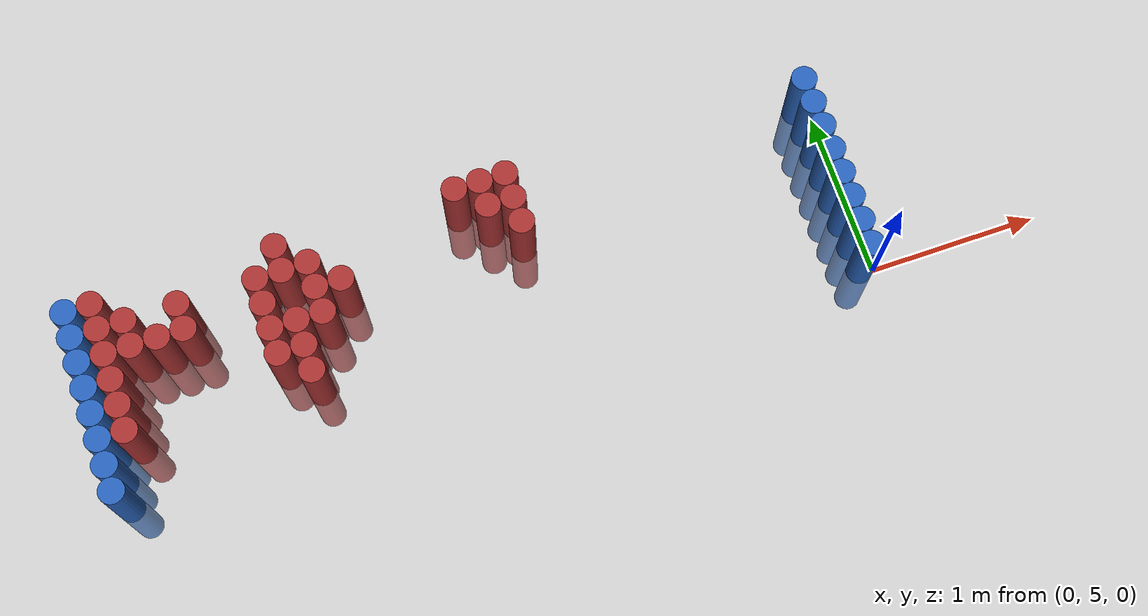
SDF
<sdf version="1.6">
 <world name="default">
  <model name="ground_plane">
   <static>1</static>
   <link name="link">
    <collision name="collision">
     <geometry><plane><normal>0 0 1</normal><size>100 100</size></plane></geometry>
     <surface><friction><ode><mu>100</mu><mu2>50</mu2></ode></friction></surface>
    </collision>
    <visual name="visual">
     <cast_shadows>0</cast_shadows>
     <geometry><plane><normal>0 0 1</normal><size>100 100</size></plane></geometry>
     <material>
      <script><uri>file://media/materials/scripts/gazebo.material</uri><name>Gazebo/Grey</name></script>
     </material>
    </visual>
   </link>
  </model>
  <model name="unit_cylinder_94">
   <static>1</static>
   <pose>-0.075000 5.025000 0.000000 0.000000 0.000000 0.000000</pose>
   <link name="link">
    <inertial>
     <mass>1</mass>
     <inertia><ixx>0.145833</ixx><ixy>0</ixy><ixz>0</ixz><iyy>0.145833</iyy><iyz>0</iyz><izz>0.125</izz></inertia>
    </inertial>
    <collision name="collision">
     <geometry><cylinder><radius>0.075000</radius><length>1</length></cylinder></geometry>
    </collision>
    <visual name="visual">
     <geometry><cylinder><radius>0.075000</radius><length>1</length></cylinder></geometry>
     <material>
      <ambient>0.152000 0.379000 0.720000 1</ambient>
      <diffuse>0.152000 0.379000 0.720000 1</diffuse>
     </material>
     <material>
      <script><name>Gazebo/Grey</name><uri>file://media/materials/scripts/gazebo.material</uri></script>
     </material>
    </visual>
   </link>
  </model>
  <model name="unit_cylinder_95">
   <static>1</static>
   <pose>-4.425000 5.025000 0.000000 0.000000 0.000000 0.000000</pose>
   <link name="link">
    <inertial>
     <mass>1</mass>
     <inertia><ixx>0.145833</ixx><ixy>0</ixy><ixz>0</ixz><iyy>0.145833</iyy><iyz>0</iyz><izz>0.125</izz></inertia>
    </inertial>
    <collision name="collision">
     <geometry><cylinder><radius>0.075000</radius><length>1</length></cylinder></geometry>
    </collision>
    <visual name="visual">
     <geometry><cylinder><radius>0.075000</radius><length>1</length></cylinder></geometry>
     <material>
      <ambient>0.152000 0.379000 0.720000 1</ambient>
      <diffuse>0.152000 0.379000 0.720000 1</diffuse>
     </material>
     <material>
      <script><name>Gazebo/Grey</name><uri>file://media/materials/scripts/gazebo.material</uri></script>
     </material>
    </visual>
   </link>
  </model>
  <model name="unit_cylinder_96">
   <static>1</static>
   <pose>-4.425000 5.175000 0.000000 0.000000 0.000000 0.000000</pose>
   <link name="link">
    <inertial>
     <mass>1</mass>
     <inertia><ixx>0.145833</ixx><ixy>0</ixy><ixz>0</ixz><iyy>0.145833</iyy><iyz>0</iyz><izz>0.125</izz></inertia>
    </inertial>
    <collision name="collision">
     <geometry><cylinder><radius>0.075000</radius><length>1</length></cylinder></geometry>
    </collision>
    <visual name="visual">
     <geometry><cylinder><radius>0.075000</radius><length>1</length></cylinder></geometry>
     <material>
      <ambient>0.152000 0.379000 0.720000 1</ambient>
      <diffuse>0.152000 0.379000 0.720000 1</diffuse>
     </material>
     <material>
      <script><name>Gazebo/Grey</name><uri>file://media/materials/scripts/gazebo.material</uri></script>
     </material>
    </visual>
   </link>
  </model>
  <model name="unit_cylinder_97">
   <static>1</static>
   <pose>-4.425000 5.325000 0.000000 0.000000 0.000000 0.000000</pose>
   <link name="link">
    <inertial>
     <mass>1</mass>
     <inertia><ixx>0.145833</ixx><ixy>0</ixy><ixz>0</ixz><iyy>0.145833</iyy><iyz>0</iyz><izz>0.125</izz></inertia>
    </inertial>
    <collision name="collision">
     <geometry><cylinder><radius>0.075000</radius><length>1</length></cylinder></geometry>
    </collision>
    <visual name="visual">
     <geometry><cylinder><radius>0.075000</radius><length>1</length></cylinder></geometry>
     <material>
      <ambient>0.152000 0.379000 0.720000 1</ambient>
      <diffuse>0.152000 0.379000 0.720000 1</diffuse>
     </material>
     <material>
      <script><name>Gazebo/Grey</name><uri>file://media/materials/scripts/gazebo.material</uri></script>
     </material>
    </visual>
   </link>
  </model>
  <model name="unit_cylinder_98">
   <static>1</static>
   <pose>-4.425000 5.475000 0.000000 0.000000 0.000000 0.000000</pose>
   <link name="link">
    <inertial>
     <mass>1</mass>
     <inertia><ixx>0.145833</ixx><ixy>0</ixy><ixz>0</ixz><iyy>0.145833</iyy><iyz>0</iyz><izz>0.125</izz></inertia>
    </inertial>
    <collision name="collision">
     <geometry><cylinder><radius>0.075000</radius><length>1</length></cylinder></geometry>
    </collision>
    <visual name="visual">
     <geometry><cylinder><radius>0.075000</radius><length>1</length></cylinder></geometry>
     <material>
      <ambient>0.152000 0.379000 0.720000 1</ambient>
      <diffuse>0.152000 0.379000 0.720000 1</diffuse>
     </material>
     <material>
      <script><name>Gazebo/Grey</name><uri>file://media/materials/scripts/gazebo.material</uri></script>
     </material>
    </visual>
   </link>
  </model>
  <model name="unit_cylinder_99">
   <static>1</static>
   <pose>-4.425000 5.625000 0.000000 0.000000 0.000000 0.000000</pose>
   <link name="link">
    <inertial>
     <mass>1</mass>
     <inertia><ixx>0.145833</ixx><ixy>0</ixy><ixz>0</ixz><iyy>0.145833</iyy><iyz>0</iyz><izz>0.125</izz></inertia>
    </inertial>
    <collision name="collision">
     <geometry><cylinder><radius>0.075000</radius><length>1</length></cylinder></geometry>
    </collision>
    <visual name="visual">
     <geometry><cylinder><radius>0.075000</radius><length>1</length></cylinder></geometry>
     <material>
      <ambient>0.152000 0.379000 0.720000 1</ambient>
      <diffuse>0.152000 0.379000 0.720000 1</diffuse>
     </material>
     <material>
      <script><name>Gazebo/Grey</name><uri>file://media/materials/scripts/gazebo.material</uri></script>
     </material>
    </visual>
   </link>
  </model>
  <model name="unit_cylinder_100">
   <static>1</static>
   <pose>-4.425000 5.775000 0.000000 0.000000 0.000000 0.000000</pose>
   <link name="link">
    <inertial>
     <mass>1</mass>
     <inertia><ixx>0.145833</ixx><ixy>0</ixy><ixz>0</ixz><iyy>0.145833</iyy><iyz>0</iyz><izz>0.125</izz></inertia>
    </inertial>
    <collision name="collision">
     <geometry><cylinder><radius>0.075000</radius><length>1</length></cylinder></geometry>
    </collision>
    <visual name="visual">
     <geometry><cylinder><radius>0.075000</radius><length>1</length></cylinder></geometry>
     <material>
      <ambient>0.152000 0.379000 0.720000 1</ambient>
      <diffuse>0.152000 0.379000 0.720000 1</diffuse>
     </material>
     <material>
      <script><name>Gazebo/Grey</name><uri>file://media/materials/scripts/gazebo.material</uri></script>
     </material>
    </visual>
   </link>
  </model>
  <model name="unit_cylinder_101">
   <static>1</static>
   <pose>-4.425000 5.925000 0.000000 0.000000 0.000000 0.000000</pose>
   <link name="link">
    <inertial>
     <mass>1</mass>
     <inertia><ixx>0.145833</ixx><ixy>0</ixy><ixz>0</ixz><iyy>0.145833</iyy><iyz>0</iyz><izz>0.125</izz></inertia>
    </inertial>
    <collision name="collision">
     <geometry><cylinder><radius>0.075000</radius><length>1</length></cylinder></geometry>
    </collision>
    <visual name="visual">
     <geometry><cylinder><radius>0.075000</radius><length>1</length></cylinder></geometry>
     <material>
      <ambient>0.152000 0.379000 0.720000 1</ambient>
      <diffuse>0.152000 0.379000 0.720000 1</diffuse>
     </material>
     <material>
      <script><name>Gazebo/Grey</name><uri>file://media/materials/scripts/gazebo.material</uri></script>
     </material>
    </visual>
   </link>
  </model>
  <model name="unit_cylinder_102">
   <static>1</static>
   <pose>-4.425000 6.075000 0.000000 0.000000 0.000000 0.000000</pose>
   <link name="link">
    <inertial>
     <mass>1</mass>
     <inertia><ixx>0.145833</ixx><ixy>0</ixy><ixz>0</ixz><iyy>0.145833</iyy><iyz>0</iyz><izz>0.125</izz></inertia>
    </inertial>
    <collision name="collision">
     <geometry><cylinder><radius>0.075000</radius><length>1</length></cylinder></geometry>
    </collision>
    <visual name="visual">
     <geometry><cylinder><radius>0.075000</radius><length>1</length></cylinder></geometry>
     <material>
      <ambient>0.152000 0.379000 0.720000 1</ambient>
      <diffuse>0.152000 0.379000 0.720000 1</diffuse>
     </material>
     <material>
      <script><name>Gazebo/Grey</name><uri>file://media/materials/scripts/gazebo.material</uri></script>
     </material>
    </visual>
   </link>
  </model>
  <model name="unit_cylinder_126">
   <static>1</static>
   <pose>-4.275000 5.325000 0.000000 0.000000 0.000000 0.000000</pose>
   <link name="link">
    <inertial>
     <mass>1</mass>
     <inertia><ixx>0.145833</ixx><ixy>0</ixy><ixz>0</ixz><iyy>0.145833</iyy><iyz>0</iyz><izz>0.125</izz></inertia>
    </inertial>
    <collision name="collision">
     <geometry><cylinder><radius>0.075000</radius><length>1</length></cylinder></geometry>
    </collision>
    <visual name="visual">
     <geometry><cylinder><radius>0.075000</radius><length>1</length></cylinder></geometry>
     <material>
      <ambient>0.648000 0.192000 0.192000 1</ambient>
      <diffuse>0.648000 0.192000 0.192000 1</diffuse>
     </material>
     <material>
      <script><name>Gazebo/Grey</name><uri>file://media/materials/scripts/gazebo.material</uri></script>
     </material>
    </visual>
   </link>
  </model>
  <model name="unit_cylinder_127">
   <static>1</static>
   <pose>-4.275000 5.475000 0.000000 0.000000 0.000000 0.000000</pose>
   <link name="link">
    <inertial>
     <mass>1</mass>
     <inertia><ixx>0.145833</ixx><ixy>0</ixy><ixz>0</ixz><iyy>0.145833</iyy><iyz>0</iyz><izz>0.125</izz></inertia>
    </inertial>
    <collision name="collision">
     <geometry><cylinder><radius>0.075000</radius><length>1</length></cylinder></geometry>
    </collision>
    <visual name="visual">
     <geometry><cylinder><radius>0.075000</radius><length>1</length></cylinder></geometry>
     <material>
      <ambient>0.648000 0.192000 0.192000 1</ambient>
      <diffuse>0.648000 0.192000 0.192000 1</diffuse>
     </material>
     <material>
      <script><name>Gazebo/Grey</name><uri>file://media/materials/scripts/gazebo.material</uri></script>
     </material>
    </visual>
   </link>
  </model>
  <model name="unit_cylinder_128">
   <static>1</static>
   <pose>-4.275000 5.625000 0.000000 0.000000 0.000000 0.000000</pose>
   <link name="link">
    <inertial>
     <mass>1</mass>
     <inertia><ixx>0.145833</ixx><ixy>0</ixy><ixz>0</ixz><iyy>0.145833</iyy><iyz>0</iyz><izz>0.125</izz></inertia>
    </inertial>
    <collision name="collision">
     <geometry><cylinder><radius>0.075000</radius><length>1</length></cylinder></geometry>
    </collision>
    <visual name="visual">
     <geometry><cylinder><radius>0.075000</radius><length>1</length></cylinder></geometry>
     <material>
      <ambient>0.648000 0.192000 0.192000 1</ambient>
      <diffuse>0.648000 0.192000 0.192000 1</diffuse>
     </material>
     <material>
      <script><name>Gazebo/Grey</name><uri>file://media/materials/scripts/gazebo.material</uri></script>
     </material>
    </visual>
   </link>
  </model>
  <model name="unit_cylinder_129">
   <static>1</static>
   <pose>-4.275000 5.775000 0.000000 0.000000 0.000000 0.000000</pose>
   <link name="link">
    <inertial>
     <mass>1</mass>
     <inertia><ixx>0.145833</ixx><ixy>0</ixy><ixz>0</ixz><iyy>0.145833</iyy><iyz>0</iyz><izz>0.125</izz></inertia>
    </inertial>
    <collision name="collision">
     <geometry><cylinder><radius>0.075000</radius><length>1</length></cylinder></geometry>
    </collision>
    <visual name="visual">
     <geometry><cylinder><radius>0.075000</radius><length>1</length></cylinder></geometry>
     <material>
      <ambient>0.648000 0.192000 0.192000 1</ambient>
      <diffuse>0.648000 0.192000 0.192000 1</diffuse>
     </material>
     <material>
      <script><name>Gazebo/Grey</name><uri>file://media/materials/scripts/gazebo.material</uri></script>
     </material>
    </visual>
   </link>
  </model>
  <model name="unit_cylinder_130">
   <static>1</static>
   <pose>-4.275000 5.925000 0.000000 0.000000 0.000000 0.000000</pose>
   <link name="link">
    <inertial>
     <mass>1</mass>
     <inertia><ixx>0.145833</ixx><ixy>0</ixy><ixz>0</ixz><iyy>0.145833</iyy><iyz>0</iyz><izz>0.125</izz></inertia>
    </inertial>
    <collision name="collision">
     <geometry><cylinder><radius>0.075000</radius><length>1</length></cylinder></geometry>
    </collision>
    <visual name="visual">
     <geometry><cylinder><radius>0.075000</radius><length>1</length></cylinder></geometry>
     <material>
      <ambient>0.648000 0.192000 0.192000 1</ambient>
      <diffuse>0.648000 0.192000 0.192000 1</diffuse>
     </material>
     <material>
      <script><name>Gazebo/Grey</name><uri>file://media/materials/scripts/gazebo.material</uri></script>
     </material>
    </visual>
   </link>
  </model>
  <model name="unit_cylinder_131">
   <static>1</static>
   <pose>-4.275000 6.075000 0.000000 0.000000 0.000000 0.000000</pose>
   <link name="link">
    <inertial>
     <mass>1</mass>
     <inertia><ixx>0.145833</ixx><ixy>0</ixy><ixz>0</ixz><iyy>0.145833</iyy><iyz>0</iyz><izz>0.125</izz></inertia>
    </inertial>
    <collision name="collision">
     <geometry><cylinder><radius>0.075000</radius><length>1</length></cylinder></geometry>
    </collision>
    <visual name="visual">
     <geometry><cylinder><radius>0.075000</radius><length>1</length></cylinder></geometry>
     <material>
      <ambient>0.648000 0.192000 0.192000 1</ambient>
      <diffuse>0.648000 0.192000 0.192000 1</diffuse>
     </material>
     <material>
      <script><name>Gazebo/Grey</name><uri>file://media/materials/scripts/gazebo.material</uri></script>
     </material>
    </visual>
   </link>
  </model>
  <model name="unit_cylinder_143">
   <static>1</static>
   <pose>-4.125000 5.775000 0.000000 0.000000 0.000000 0.000000</pose>
   <link name="link">
    <inertial>
     <mass>1</mass>
     <inertia><ixx>0.145833</ixx><ixy>0</ixy><ixz>0</ixz><iyy>0.145833</iyy><iyz>0</iyz><izz>0.125</izz></inertia>
    </inertial>
    <collision name="collision">
     <geometry><cylinder><radius>0.075000</radius><length>1</length></cylinder></geometry>
    </collision>
    <visual name="visual">
     <geometry><cylinder><radius>0.075000</radius><length>1</length></cylinder></geometry>
     <material>
      <ambient>0.648000 0.192000 0.192000 1</ambient>
      <diffuse>0.648000 0.192000 0.192000 1</diffuse>
     </material>
     <material>
      <script><name>Gazebo/Grey</name><uri>file://media/materials/scripts/gazebo.material</uri></script>
     </material>
    </visual>
   </link>
  </model>
  <model name="unit_cylinder_144">
   <static>1</static>
   <pose>-4.125000 5.925000 0.000000 0.000000 0.000000 0.000000</pose>
   <link name="link">
    <inertial>
     <mass>1</mass>
     <inertia><ixx>0.145833</ixx><ixy>0</ixy><ixz>0</ixz><iyy>0.145833</iyy><iyz>0</iyz><izz>0.125</izz></inertia>
    </inertial>
    <collision name="collision">
     <geometry><cylinder><radius>0.075000</radius><length>1</length></cylinder></geometry>
    </collision>
    <visual name="visual">
     <geometry><cylinder><radius>0.075000</radius><length>1</length></cylinder></geometry>
     <material>
      <ambient>0.648000 0.192000 0.192000 1</ambient>
      <diffuse>0.648000 0.192000 0.192000 1</diffuse>
     </material>
     <material>
      <script><name>Gazebo/Grey</name><uri>file://media/materials/scripts/gazebo.material</uri></script>
     </material>
    </visual>
   </link>
  </model>
  <model name="unit_cylinder_150">
   <static>1</static>
   <pose>-3.975000 5.775000 0.000000 0.000000 0.000000 0.000000</pose>
   <link name="link">
    <inertial>
     <mass>1</mass>
     <inertia><ixx>0.145833</ixx><ixy>0</ixy><ixz>0</ixz><iyy>0.145833</iyy><iyz>0</iyz><izz>0.125</izz></inertia>
    </inertial>
    <collision name="collision">
     <geometry><cylinder><radius>0.075000</radius><length>1</length></cylinder></geometry>
    </collision>
    <visual name="visual">
     <geometry><cylinder><radius>0.075000</radius><length>1</length></cylinder></geometry>
     <material>
      <ambient>0.648000 0.192000 0.192000 1</ambient>
      <diffuse>0.648000 0.192000 0.192000 1</diffuse>
     </material>
     <material>
      <script><name>Gazebo/Grey</name><uri>file://media/materials/scripts/gazebo.material</uri></script>
     </material>
    </visual>
   </link>
  </model>
  <model name="unit_cylinder_158">
   <static>1</static>
   <pose>-3.825000 5.775000 0.000000 0.000000 0.000000 0.000000</pose>
   <link name="link">
    <inertial>
     <mass>1</mass>
     <inertia><ixx>0.145833</ixx><ixy>0</ixy><ixz>0</ixz><iyy>0.145833</iyy><iyz>0</iyz><izz>0.125</izz></inertia>
    </inertial>
    <collision name="collision">
     <geometry><cylinder><radius>0.075000</radius><length>1</length></cylinder></geometry>
    </collision>
    <visual name="visual">
     <geometry><cylinder><radius>0.075000</radius><length>1</length></cylinder></geometry>
     <material>
      <ambient>0.648000 0.192000 0.192000 1</ambient>
      <diffuse>0.648000 0.192000 0.192000 1</diffuse>
     </material>
     <material>
      <script><name>Gazebo/Grey</name><uri>file://media/materials/scripts/gazebo.material</uri></script>
     </material>
    </visual>
   </link>
  </model>
  <model name="unit_cylinder_159">
   <static>1</static>
   <pose>-3.825000 5.925000 0.000000 0.000000 0.000000 0.000000</pose>
   <link name="link">
    <inertial>
     <mass>1</mass>
     <inertia><ixx>0.145833</ixx><ixy>0</ixy><ixz>0</ixz><iyy>0.145833</iyy><iyz>0</iyz><izz>0.125</izz></inertia>
    </inertial>
    <collision name="collision">
     <geometry><cylinder><radius>0.075000</radius><length>1</length></cylinder></geometry>
    </collision>
    <visual name="visual">
     <geometry><cylinder><radius>0.075000</radius><length>1</length></cylinder></geometry>
     <material>
      <ambient>0.648000 0.192000 0.192000 1</ambient>
      <diffuse>0.648000 0.192000 0.192000 1</diffuse>
     </material>
     <material>
      <script><name>Gazebo/Grey</name><uri>file://media/materials/scripts/gazebo.material</uri></script>
     </material>
    </visual>
   </link>
  </model>
  <model name="unit_cylinder_164">
   <static>1</static>
   <pose>-3.375000 5.475000 0.000000 0.000000 0.000000 0.000000</pose>
   <link name="link">
    <inertial>
     <mass>1</mass>
     <inertia><ixx>0.145833</ixx><ixy>0</ixy><ixz>0</ixz><iyy>0.145833</iyy><iyz>0</iyz><izz>0.125</izz></inertia>
    </inertial>
    <collision name="collision">
     <geometry><cylinder><radius>0.075000</radius><length>1</length></cylinder></geometry>
    </collision>
    <visual name="visual">
     <geometry><cylinder><radius>0.075000</radius><length>1</length></cylinder></geometry>
     <material>
      <ambient>0.648000 0.192000 0.192000 1</ambient>
      <diffuse>0.648000 0.192000 0.192000 1</diffuse>
     </material>
     <material>
      <script><name>Gazebo/Grey</name><uri>file://media/materials/scripts/gazebo.material</uri></script>
     </material>
    </visual>
   </link>
  </model>
  <model name="unit_cylinder_165">
   <static>1</static>
   <pose>-3.375000 5.625000 0.000000 0.000000 0.000000 0.000000</pose>
   <link name="link">
    <inertial>
     <mass>1</mass>
     <inertia><ixx>0.145833</ixx><ixy>0</ixy><ixz>0</ixz><iyy>0.145833</iyy><iyz>0</iyz><izz>0.125</izz></inertia>
    </inertial>
    <collision name="collision">
     <geometry><cylinder><radius>0.075000</radius><length>1</length></cylinder></geometry>
    </collision>
    <visual name="visual">
     <geometry><cylinder><radius>0.075000</radius><length>1</length></cylinder></geometry>
     <material>
      <ambient>0.648000 0.192000 0.192000 1</ambient>
      <diffuse>0.648000 0.192000 0.192000 1</diffuse>
     </material>
     <material>
      <script><name>Gazebo/Grey</name><uri>file://media/materials/scripts/gazebo.material</uri></script>
     </material>
    </visual>
   </link>
  </model>
  <model name="unit_cylinder_166">
   <static>1</static>
   <pose>-3.375000 5.775000 0.000000 0.000000 0.000000 0.000000</pose>
   <link name="link">
    <inertial>
     <mass>1</mass>
     <inertia><ixx>0.145833</ixx><ixy>0</ixy><ixz>0</ixz><iyy>0.145833</iyy><iyz>0</iyz><izz>0.125</izz></inertia>
    </inertial>
    <collision name="collision">
     <geometry><cylinder><radius>0.075000</radius><length>1</length></cylinder></geometry>
    </collision>
    <visual name="visual">
     <geometry><cylinder><radius>0.075000</radius><length>1</length></cylinder></geometry>
     <material>
      <ambient>0.648000 0.192000 0.192000 1</ambient>
      <diffuse>0.648000 0.192000 0.192000 1</diffuse>
     </material>
     <material>
      <script><name>Gazebo/Grey</name><uri>file://media/materials/scripts/gazebo.material</uri></script>
     </material>
    </visual>
   </link>
  </model>
  <model name="unit_cylinder_167">
   <static>1</static>
   <pose>-3.375000 5.925000 0.000000 0.000000 0.000000 0.000000</pose>
   <link name="link">
    <inertial>
     <mass>1</mass>
     <inertia><ixx>0.145833</ixx><ixy>0</ixy><ixz>0</ixz><iyy>0.145833</iyy><iyz>0</iyz><izz>0.125</izz></inertia>
    </inertial>
    <collision name="collision">
     <geometry><cylinder><radius>0.075000</radius><length>1</length></cylinder></geometry>
    </collision>
    <visual name="visual">
     <geometry><cylinder><radius>0.075000</radius><length>1</length></cylinder></geometry>
     <material>
      <ambient>0.648000 0.192000 0.192000 1</ambient>
      <diffuse>0.648000 0.192000 0.192000 1</diffuse>
     </material>
     <material>
      <script><name>Gazebo/Grey</name><uri>file://media/materials/scripts/gazebo.material</uri></script>
     </material>
    </visual>
   </link>
  </model>
  <model name="unit_cylinder_168">
   <static>1</static>
   <pose>-3.225000 5.325000 0.000000 0.000000 0.000000 0.000000</pose>
   <link name="link">
    <inertial>
     <mass>1</mass>
     <inertia><ixx>0.145833</ixx><ixy>0</ixy><ixz>0</ixz><iyy>0.145833</iyy><iyz>0</iyz><izz>0.125</izz></inertia>
    </inertial>
    <collision name="collision">
     <geometry><cylinder><radius>0.075000</radius><length>1</length></cylinder></geometry>
    </collision>
    <visual name="visual">
     <geometry><cylinder><radius>0.075000</radius><length>1</length></cylinder></geometry>
     <material>
      <ambient>0.648000 0.192000 0.192000 1</ambient>
      <diffuse>0.648000 0.192000 0.192000 1</diffuse>
     </material>
     <material>
      <script><name>Gazebo/Grey</name><uri>file://media/materials/scripts/gazebo.material</uri></script>
     </material>
    </visual>
   </link>
  </model>
  <model name="unit_cylinder_169">
   <static>1</static>
   <pose>-3.225000 5.475000 0.000000 0.000000 0.000000 0.000000</pose>
   <link name="link">
    <inertial>
     <mass>1</mass>
     <inertia><ixx>0.145833</ixx><ixy>0</ixy><ixz>0</ixz><iyy>0.145833</iyy><iyz>0</iyz><izz>0.125</izz></inertia>
    </inertial>
    <collision name="collision">
     <geometry><cylinder><radius>0.075000</radius><length>1</length></cylinder></geometry>
    </collision>
    <visual name="visual">
     <geometry><cylinder><radius>0.075000</radius><length>1</length></cylinder></geometry>
     <material>
      <ambient>0.648000 0.192000 0.192000 1</ambient>
      <diffuse>0.648000 0.192000 0.192000 1</diffuse>
     </material>
     <material>
      <script><name>Gazebo/Grey</name><uri>file://media/materials/scripts/gazebo.material</uri></script>
     </material>
    </visual>
   </link>
  </model>
  <model name="unit_cylinder_170">
   <static>1</static>
   <pose>-3.225000 5.625000 0.000000 0.000000 0.000000 0.000000</pose>
   <link name="link">
    <inertial>
     <mass>1</mass>
     <inertia><ixx>0.145833</ixx><ixy>0</ixy><ixz>0</ixz><iyy>0.145833</iyy><iyz>0</iyz><izz>0.125</izz></inertia>
    </inertial>
    <collision name="collision">
     <geometry><cylinder><radius>0.075000</radius><length>1</length></cylinder></geometry>
    </collision>
    <visual name="visual">
     <geometry><cylinder><radius>0.075000</radius><length>1</length></cylinder></geometry>
     <material>
      <ambient>0.648000 0.192000 0.192000 1</ambient>
      <diffuse>0.648000 0.192000 0.192000 1</diffuse>
     </material>
     <material>
      <script><name>Gazebo/Grey</name><uri>file://media/materials/scripts/gazebo.material</uri></script>
     </material>
    </visual>
   </link>
  </model>
  <model name="unit_cylinder_171">
   <static>1</static>
   <pose>-3.225000 5.925000 0.000000 0.000000 0.000000 0.000000</pose>
   <link name="link">
    <inertial>
     <mass>1</mass>
     <inertia><ixx>0.145833</ixx><ixy>0</ixy><ixz>0</ixz><iyy>0.145833</iyy><iyz>0</iyz><izz>0.125</izz></inertia>
    </inertial>
    <collision name="collision">
     <geometry><cylinder><radius>0.075000</radius><length>1</length></cylinder></geometry>
    </collision>
    <visual name="visual">
     <geometry><cylinder><radius>0.075000</radius><length>1</length></cylinder></geometry>
     <material>
      <ambient>0.648000 0.192000 0.192000 1</ambient>
      <diffuse>0.648000 0.192000 0.192000 1</diffuse>
     </material>
     <material>
      <script><name>Gazebo/Grey</name><uri>file://media/materials/scripts/gazebo.material</uri></script>
     </material>
    </visual>
   </link>
  </model>
  <model name="unit_cylinder_172">
   <static>1</static>
   <pose>-3.225000 6.075000 0.000000 0.000000 0.000000 0.000000</pose>
   <link name="link">
    <inertial>
     <mass>1</mass>
     <inertia><ixx>0.145833</ixx><ixy>0</ixy><ixz>0</ixz><iyy>0.145833</iyy><iyz>0</iyz><izz>0.125</izz></inertia>
    </inertial>
    <collision name="collision">
     <geometry><cylinder><radius>0.075000</radius><length>1</length></cylinder></geometry>
    </collision>
    <visual name="visual">
     <geometry><cylinder><radius>0.075000</radius><length>1</length></cylinder></geometry>
     <material>
      <ambient>0.648000 0.192000 0.192000 1</ambient>
      <diffuse>0.648000 0.192000 0.192000 1</diffuse>
     </material>
     <material>
      <script><name>Gazebo/Grey</name><uri>file://media/materials/scripts/gazebo.material</uri></script>
     </material>
    </visual>
   </link>
  </model>
  <model name="unit_cylinder_173">
   <static>1</static>
   <pose>-3.075000 5.625000 0.000000 0.000000 0.000000 0.000000</pose>
   <link name="link">
    <inertial>
     <mass>1</mass>
     <inertia><ixx>0.145833</ixx><ixy>0</ixy><ixz>0</ixz><iyy>0.145833</iyy><iyz>0</iyz><izz>0.125</izz></inertia>
    </inertial>
    <collision name="collision">
     <geometry><cylinder><radius>0.075000</radius><length>1</length></cylinder></geometry>
    </collision>
    <visual name="visual">
     <geometry><cylinder><radius>0.075000</radius><length>1</length></cylinder></geometry>
     <material>
      <ambient>0.648000 0.192000 0.192000 1</ambient>
      <diffuse>0.648000 0.192000 0.192000 1</diffuse>
     </material>
     <material>
      <script><name>Gazebo/Grey</name><uri>file://media/materials/scripts/gazebo.material</uri></script>
     </material>
    </visual>
   </link>
  </model>
  <model name="unit_cylinder_174">
   <static>1</static>
   <pose>-3.075000 5.775000 0.000000 0.000000 0.000000 0.000000</pose>
   <link name="link">
    <inertial>
     <mass>1</mass>
     <inertia><ixx>0.145833</ixx><ixy>0</ixy><ixz>0</ixz><iyy>0.145833</iyy><iyz>0</iyz><izz>0.125</izz></inertia>
    </inertial>
    <collision name="collision">
     <geometry><cylinder><radius>0.075000</radius><length>1</length></cylinder></geometry>
    </collision>
    <visual name="visual">
     <geometry><cylinder><radius>0.075000</radius><length>1</length></cylinder></geometry>
     <material>
      <ambient>0.648000 0.192000 0.192000 1</ambient>
      <diffuse>0.648000 0.192000 0.192000 1</diffuse>
     </material>
     <material>
      <script><name>Gazebo/Grey</name><uri>file://media/materials/scripts/gazebo.material</uri></script>
     </material>
    </visual>
   </link>
  </model>
  <model name="unit_cylinder_175">
   <static>1</static>
   <pose>-3.075000 5.925000 0.000000 0.000000 0.000000 0.000000</pose>
   <link name="link">
    <inertial>
     <mass>1</mass>
     <inertia><ixx>0.145833</ixx><ixy>0</ixy><ixz>0</ixz><iyy>0.145833</iyy><iyz>0</iyz><izz>0.125</izz></inertia>
    </inertial>
    <collision name="collision">
     <geometry><cylinder><radius>0.075000</radius><length>1</length></cylinder></geometry>
    </collision>
    <visual name="visual">
     <geometry><cylinder><radius>0.075000</radius><length>1</length></cylinder></geometry>
     <material>
      <ambient>0.648000 0.192000 0.192000 1</ambient>
      <diffuse>0.648000 0.192000 0.192000 1</diffuse>
     </material>
     <material>
      <script><name>Gazebo/Grey</name><uri>file://media/materials/scripts/gazebo.material</uri></script>
     </material>
    </visual>
   </link>
  </model>
  <model name="unit_cylinder_176">
   <static>1</static>
   <pose>-2.925000 5.775000 0.000000 0.000000 0.000000 0.000000</pose>
   <link name="link">
    <inertial>
     <mass>1</mass>
     <inertia><ixx>0.145833</ixx><ixy>0</ixy><ixz>0</ixz><iyy>0.145833</iyy><iyz>0</iyz><izz>0.125</izz></inertia>
    </inertial>
    <collision name="collision">
     <geometry><cylinder><radius>0.075000</radius><length>1</length></cylinder></geometry>
    </collision>
    <visual name="visual">
     <geometry><cylinder><radius>0.075000</radius><length>1</length></cylinder></geometry>
     <material>
      <ambient>0.648000 0.192000 0.192000 1</ambient>
      <diffuse>0.648000 0.192000 0.192000 1</diffuse>
     </material>
     <material>
      <script><name>Gazebo/Grey</name><uri>file://media/materials/scripts/gazebo.material</uri></script>
     </material>
    </visual>
   </link>
  </model>
  <model name="unit_cylinder_186">
   <static>1</static>
   <pose>-2.175000 6.075000 0.000000 0.000000 0.000000 0.000000</pose>
   <link name="link">
    <inertial>
     <mass>1</mass>
     <inertia><ixx>0.145833</ixx><ixy>0</ixy><ixz>0</ixz><iyy>0.145833</iyy><iyz>0</iyz><izz>0.125</izz></inertia>
    </inertial>
    <collision name="collision">
     <geometry><cylinder><radius>0.075000</radius><length>1</length></cylinder></geometry>
    </collision>
    <visual name="visual">
     <geometry><cylinder><radius>0.075000</radius><length>1</length></cylinder></geometry>
     <material>
      <ambient>0.648000 0.192000 0.192000 1</ambient>
      <diffuse>0.648000 0.192000 0.192000 1</diffuse>
     </material>
     <material>
      <script><name>Gazebo/Grey</name><uri>file://media/materials/scripts/gazebo.material</uri></script>
     </material>
    </visual>
   </link>
  </model>
  <model name="unit_cylinder_190">
   <static>1</static>
   <pose>-2.025000 5.925000 0.000000 0.000000 0.000000 0.000000</pose>
   <link name="link">
    <inertial>
     <mass>1</mass>
     <inertia><ixx>0.145833</ixx><ixy>0</ixy><ixz>0</ixz><iyy>0.145833</iyy><iyz>0</iyz><izz>0.125</izz></inertia>
    </inertial>
    <collision name="collision">
     <geometry><cylinder><radius>0.075000</radius><length>1</length></cylinder></geometry>
    </collision>
    <visual name="visual">
     <geometry><cylinder><radius>0.075000</radius><length>1</length></cylinder></geometry>
     <material>
      <ambient>0.648000 0.192000 0.192000 1</ambient>
      <diffuse>0.648000 0.192000 0.192000 1</diffuse>
     </material>
     <material>
      <script><name>Gazebo/Grey</name><uri>file://media/materials/scripts/gazebo.material</uri></script>
     </material>
    </visual>
   </link>
  </model>
  <model name="unit_cylinder_191">
   <static>1</static>
   <pose>-2.025000 6.075000 0.000000 0.000000 0.000000 0.000000</pose>
   <link name="link">
    <inertial>
     <mass>1</mass>
     <inertia><ixx>0.145833</ixx><ixy>0</ixy><ixz>0</ixz><iyy>0.145833</iyy><iyz>0</iyz><izz>0.125</izz></inertia>
    </inertial>
    <collision name="collision">
     <geometry><cylinder><radius>0.075000</radius><length>1</length></cylinder></geometry>
    </collision>
    <visual name="visual">
     <geometry><cylinder><radius>0.075000</radius><length>1</length></cylinder></geometry>
     <material>
      <ambient>0.648000 0.192000 0.192000 1</ambient>
      <diffuse>0.648000 0.192000 0.192000 1</diffuse>
     </material>
     <material>
      <script><name>Gazebo/Grey</name><uri>file://media/materials/scripts/gazebo.material</uri></script>
     </material>
    </visual>
   </link>
  </model>
  <model name="unit_cylinder_195">
   <static>1</static>
   <pose>-1.875000 5.775000 0.000000 0.000000 0.000000 0.000000</pose>
   <link name="link">
    <inertial>
     <mass>1</mass>
     <inertia><ixx>0.145833</ixx><ixy>0</ixy><ixz>0</ixz><iyy>0.145833</iyy><iyz>0</iyz><izz>0.125</izz></inertia>
    </inertial>
    <collision name="collision">
     <geometry><cylinder><radius>0.075000</radius><length>1</length></cylinder></geometry>
    </collision>
    <visual name="visual">
     <geometry><cylinder><radius>0.075000</radius><length>1</length></cylinder></geometry>
     <material>
      <ambient>0.648000 0.192000 0.192000 1</ambient>
      <diffuse>0.648000 0.192000 0.192000 1</diffuse>
     </material>
     <material>
      <script><name>Gazebo/Grey</name><uri>file://media/materials/scripts/gazebo.material</uri></script>
     </material>
    </visual>
   </link>
  </model>
  <model name="unit_cylinder_196">
   <static>1</static>
   <pose>-1.875000 5.925000 0.000000 0.000000 0.000000 0.000000</pose>
   <link name="link">
    <inertial>
     <mass>1</mass>
     <inertia><ixx>0.145833</ixx><ixy>0</ixy><ixz>0</ixz><iyy>0.145833</iyy><iyz>0</iyz><izz>0.125</izz></inertia>
    </inertial>
    <collision name="collision">
     <geometry><cylinder><radius>0.075000</radius><length>1</length></cylinder></geometry>
    </collision>
    <visual name="visual">
     <geometry><cylinder><radius>0.075000</radius><length>1</length></cylinder></geometry>
     <material>
      <ambient>0.648000 0.192000 0.192000 1</ambient>
      <diffuse>0.648000 0.192000 0.192000 1</diffuse>
     </material>
     <material>
      <script><name>Gazebo/Grey</name><uri>file://media/materials/scripts/gazebo.material</uri></script>
     </material>
    </visual>
   </link>
  </model>
  <model name="unit_cylinder_197">
   <static>1</static>
   <pose>-1.875000 6.075000 0.000000 0.000000 0.000000 0.000000</pose>
   <link name="link">
    <inertial>
     <mass>1</mass>
     <inertia><ixx>0.145833</ixx><ixy>0</ixy><ixz>0</ixz><iyy>0.145833</iyy><iyz>0</iyz><izz>0.125</izz></inertia>
    </inertial>
    <collision name="collision">
     <geometry><cylinder><radius>0.075000</radius><length>1</length></cylinder></geometry>
    </collision>
    <visual name="visual">
     <geometry><cylinder><radius>0.075000</radius><length>1</length></cylinder></geometry>
     <material>
      <ambient>0.648000 0.192000 0.192000 1</ambient>
      <diffuse>0.648000 0.192000 0.192000 1</diffuse>
     </material>
     <material>
      <script><name>Gazebo/Grey</name><uri>file://media/materials/scripts/gazebo.material</uri></script>
     </material>
    </visual>
   </link>
  </model>
  <model name="unit_cylinder_249">
   <static>1</static>
   <pose>-0.075000 5.175000 0.000000 0.000000 0.000000 0.000000</pose>
   <link name="link">
    <inertial>
     <mass>1</mass>
     <inertia><ixx>0.145833</ixx><ixy>0</ixy><ixz>0</ixz><iyy>0.145833</iyy><iyz>0</iyz><izz>0.125</izz></inertia>
    </inertial>
    <collision name="collision">
     <geometry><cylinder><radius>0.075000</radius><length>1</length></cylinder></geometry>
    </collision>
    <visual name="visual">
     <geometry><cylinder><radius>0.075000</radius><length>1</length></cylinder></geometry>
     <material>
      <ambient>0.152000 0.379000 0.720000 1</ambient>
      <diffuse>0.152000 0.379000 0.720000 1</diffuse>
     </material>
     <material>
      <script><name>Gazebo/Grey</name><uri>file://media/materials/scripts/gazebo.material</uri></script>
     </material>
    </visual>
   </link>
  </model>
  <model name="unit_cylinder_250">
   <static>1</static>
   <pose>-0.075000 5.325000 0.000000 0.000000 0.000000 0.000000</pose>
   <link name="link">
    <inertial>
     <mass>1</mass>
     <inertia><ixx>0.145833</ixx><ixy>0</ixy><ixz>0</ixz><iyy>0.145833</iyy><iyz>0</iyz><izz>0.125</izz></inertia>
    </inertial>
    <collision name="collision">
     <geometry><cylinder><radius>0.075000</radius><length>1</length></cylinder></geometry>
    </collision>
    <visual name="visual">
     <geometry><cylinder><radius>0.075000</radius><length>1</length></cylinder></geometry>
     <material>
      <ambient>0.152000 0.379000 0.720000 1</ambient>
      <diffuse>0.152000 0.379000 0.720000 1</diffuse>
     </material>
     <material>
      <script><name>Gazebo/Grey</name><uri>file://media/materials/scripts/gazebo.material</uri></script>
     </material>
    </visual>
   </link>
  </model>
  <model name="unit_cylinder_251">
   <static>1</static>
   <pose>-0.075000 5.475000 0.000000 0.000000 0.000000 0.000000</pose>
   <link name="link">
    <inertial>
     <mass>1</mass>
     <inertia><ixx>0.145833</ixx><ixy>0</ixy><ixz>0</ixz><iyy>0.145833</iyy><iyz>0</iyz><izz>0.125</izz></inertia>
    </inertial>
    <collision name="collision">
     <geometry><cylinder><radius>0.075000</radius><length>1</length></cylinder></geometry>
    </collision>
    <visual name="visual">
     <geometry><cylinder><radius>0.075000</radius><length>1</length></cylinder></geometry>
     <material>
      <ambient>0.152000 0.379000 0.720000 1</ambient>
      <diffuse>0.152000 0.379000 0.720000 1</diffuse>
     </material>
     <material>
      <script><name>Gazebo/Grey</name><uri>file://media/materials/scripts/gazebo.material</uri></script>
     </material>
    </visual>
   </link>
  </model>
  <model name="unit_cylinder_252">
   <static>1</static>
   <pose>-0.075000 5.625000 0.000000 0.000000 0.000000 0.000000</pose>
   <link name="link">
    <inertial>
     <mass>1</mass>
     <inertia><ixx>0.145833</ixx><ixy>0</ixy><ixz>0</ixz><iyy>0.145833</iyy><iyz>0</iyz><izz>0.125</izz></inertia>
    </inertial>
    <collision name="collision">
     <geometry><cylinder><radius>0.075000</radius><length>1</length></cylinder></geometry>
    </collision>
    <visual name="visual">
     <geometry><cylinder><radius>0.075000</radius><length>1</length></cylinder></geometry>
     <material>
      <ambient>0.152000 0.379000 0.720000 1</ambient>
      <diffuse>0.152000 0.379000 0.720000 1</diffuse>
     </material>
     <material>
      <script><name>Gazebo/Grey</name><uri>file://media/materials/scripts/gazebo.material</uri></script>
     </material>
    </visual>
   </link>
  </model>
  <model name="unit_cylinder_253">
   <static>1</static>
   <pose>-0.075000 5.775000 0.000000 0.000000 0.000000 0.000000</pose>
   <link name="link">
    <inertial>
     <mass>1</mass>
     <inertia><ixx>0.145833</ixx><ixy>0</ixy><ixz>0</ixz><iyy>0.145833</iyy><iyz>0</iyz><izz>0.125</izz></inertia>
    </inertial>
    <collision name="collision">
     <geometry><cylinder><radius>0.075000</radius><length>1</length></cylinder></geometry>
    </collision>
    <visual name="visual">
     <geometry><cylinder><radius>0.075000</radius><length>1</length></cylinder></geometry>
     <material>
      <ambient>0.152000 0.379000 0.720000 1</ambient>
      <diffuse>0.152000 0.379000 0.720000 1</diffuse>
     </material>
     <material>
      <script><name>Gazebo/Grey</name><uri>file://media/materials/scripts/gazebo.material</uri></script>
     </material>
    </visual>
   </link>
  </model>
  <model name="unit_cylinder_254">
   <static>1</static>
   <pose>-0.075000 5.925000 0.000000 0.000000 0.000000 0.000000</pose>
   <link name="link">
    <inertial>
     <mass>1</mass>
     <inertia><ixx>0.145833</ixx><ixy>0</ixy><ixz>0</ixz><iyy>0.145833</iyy><iyz>0</iyz><izz>0.125</izz></inertia>
    </inertial>
    <collision name="collision">
     <geometry><cylinder><radius>0.075000</radius><length>1</length></cylinder></geometry>
    </collision>
    <visual name="visual">
     <geometry><cylinder><radius>0.075000</radius><length>1</length></cylinder></geometry>
     <material>
      <ambient>0.152000 0.379000 0.720000 1</ambient>
      <diffuse>0.152000 0.379000 0.720000 1</diffuse>
     </material>
     <material>
      <script><name>Gazebo/Grey</name><uri>file://media/materials/scripts/gazebo.material</uri></script>
     </material>
    </visual>
   </link>
  </model>
  <model name="unit_cylinder_255">
   <static>1</static>
   <pose>-0.075000 6.075000 0.000000 0.000000 0.000000 0.000000</pose>
   <link name="link">
    <inertial>
     <mass>1</mass>
     <inertia><ixx>0.145833</ixx><ixy>0</ixy><ixz>0</ixz><iyy>0.145833</iyy><iyz>0</iyz><izz>0.125</izz></inertia>
    </inertial>
    <collision name="collision">
     <geometry><cylinder><radius>0.075000</radius><length>1</length></cylinder></geometry>
    </collision>
    <visual name="visual">
     <geometry><cylinder><radius>0.075000</radius><length>1</length></cylinder></geometry>
     <material>
      <ambient>0.152000 0.379000 0.720000 1</ambient>
      <diffuse>0.152000 0.379000 0.720000 1</diffuse>
     </material>
     <material>
      <script><name>Gazebo/Grey</name><uri>file://media/materials/scripts/gazebo.material</uri></script>
     </material>
    </visual>
   </link>
  </model>
 </world>
</sdf>
